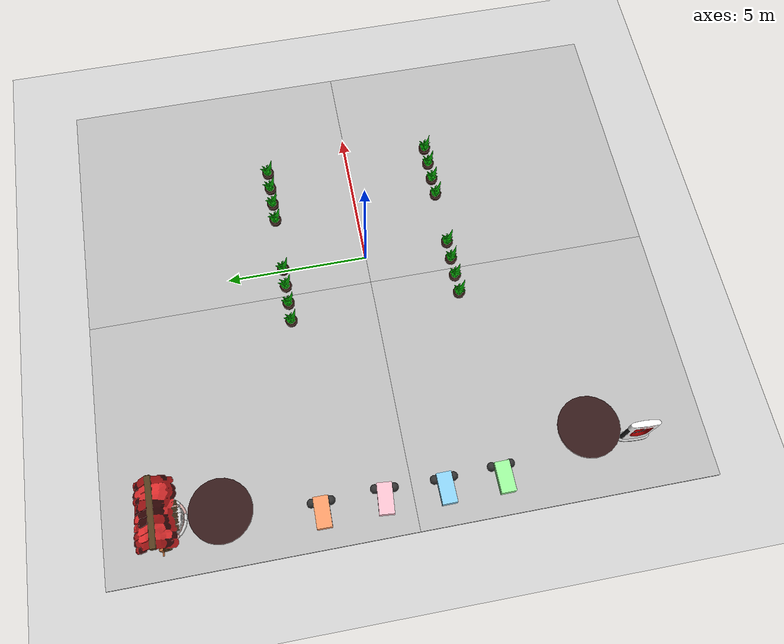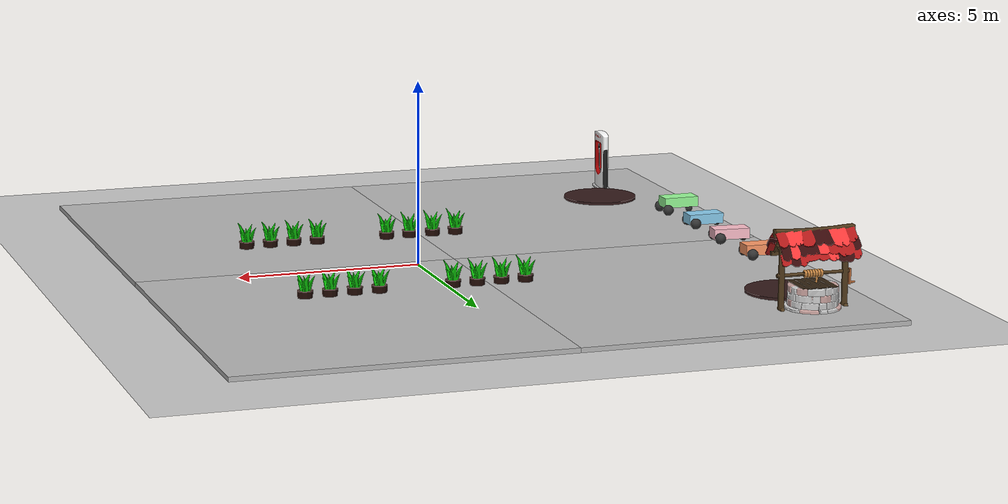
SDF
<sdf version="1.7">
 <world name="default">
  <model name="robot">
   <pose>-8.62492 2.96894 0.42331 3.3e-05 0.001765 -0.007859</pose>
   <link name="base_link">
    <pose>-0.075714 -0 0.0875 0 -0 0</pose>
    <inertial>
     <mass>1.14395</mass>
     <inertia>
      <ixx>0.126164</ixx>
      <ixy>0</ixy>
      <ixz>0</ixz>
      <iyy>0.416519</iyy>
      <iyz>0</iyz>
      <izz>0.481014</izz>
     </inertia>
    </inertial>
    <visual name="visual">
     <geometry><box><size>1.00571 0.5 0.284363</size></box></geometry>
     <material>
      <ambient>1.0 0.6 0.4 1.0</ambient>
      <diffuse>1.0 0.6 0.4 1.0</diffuse>
      <specular>1.0 0.8 0.6 1.0</specular>
     </material>
    </visual>
    <collision name="collision"><geometry><box><size>1.00571 0.5 0.284363</size></box></geometry></collision>
   </link>
   <link name="left_wheel">
    <pose>0.277142 0.312515 -0.0125 -1.5707 0 0</pose>
    <inertial>
     <mass>2</mass>
     <inertia><ixx>0.145833</ixx><ixy>0</ixy><ixz>0</ixz><iyy>0.145833</iyy><iyz>0</iyz><izz>0.125</izz></inertia>
    </inertial>
    <visual name="visual">
     <geometry><sphere><radius>0.15</radius></sphere></geometry>
     <material>
      <ambient>0.1 0.1 0.1 1.0</ambient>
      <diffuse>0.2 0.2 0.2 1.0</diffuse>
      <specular>0.3 0.3 0.3 1.0</specular>
     </material>
    </visual>
    <collision name="collision">
     <geometry><sphere><radius>0.15</radius></sphere></geometry>
     <surface>
      <friction><ode><mu>1</mu><mu2>1</mu2><slip1>0</slip1><slip2>0</slip2></ode></friction>
      <contact>
       <ode>
        <soft_cfm>0</soft_cfm>
        <soft_erp>0.2</soft_erp>
        <kp>1e+13</kp>
        <kd>1</kd>
        <max_vel>0.01</max_vel>
        <min_depth>0.01</min_depth>
       </ode>
      </contact>
     </surface>
    </collision>
   </link>
   <link name="right_wheel">
    <pose>0.277141 -0.312515 -0.0125 -1.5707 0 0</pose>
    <inertial>
     <mass>2</mass>
     <inertia><ixx>0.145833</ixx><ixy>0</ixy><ixz>0</ixz><iyy>0.145833</iyy><iyz>0</iyz><izz>0.125</izz></inertia>
    </inertial>
    <visual name="visual">
     <geometry><sphere><radius>0.15</radius></sphere></geometry>
     <material>
      <ambient>0.1 0.1 0.1 1.0</ambient>
      <diffuse>0.2 0.2 0.2 1.0</diffuse>
      <specular>0.3 0.3 0.3 1.0</specular>
     </material>
    </visual>
    <collision name="collision">
     <geometry><sphere><radius>0.15</radius></sphere></geometry>
     <surface>
      <friction><ode><mu>1</mu><mu2>1</mu2><slip1>0</slip1><slip2>0</slip2></ode></friction>
      <contact>
       <ode>
        <soft_cfm>0</soft_cfm>
        <soft_erp>0.2</soft_erp>
        <kp>1e+13</kp>
        <kd>1</kd>
        <max_vel>0.01</max_vel>
        <min_depth>0.01</min_depth>
       </ode>
      </contact>
     </surface>
    </collision>
   </link>
   <link name="caster">
    <pose>-0.478569 -0 -0.0625 0 -0 0</pose>
    <inertial>
     <mass>1</mass>
     <inertia><ixx>0.1</ixx><ixy>0</ixy><ixz>0</ixz><iyy>0.1</iyy><iyz>0</iyz><izz>0.1</izz></inertia>
    </inertial>
    <visual name="visual">
     <geometry><sphere><radius>0.1</radius></sphere></geometry>
     <material>
      <ambient>0.1 0.1 0.1 1.0</ambient>
      <diffuse>0.2 0.2 0.2 1.0</diffuse>
      <specular>0.3 0.3 0.3 1.0</specular>
     </material>
    </visual>
    <collision name="collision"><geometry><sphere><radius>0.1</radius></sphere></geometry></collision>
   </link>
   <joint name="left_wheel_joint" type="revolute">
    <parent>base_link</parent>
    <child>left_wheel</child>
    <axis>
     <xyz>0 0 1</xyz>
     <limit><lower>-1.79769e+308</lower><upper>1.79769e+308</upper></limit>
     <dynamics><spring_reference>0</spring_reference><spring_stiffness>0</spring_stiffness></dynamics>
    </axis>
   </joint>
   <joint name="right_wheel_joint" type="revolute">
    <parent>base_link</parent>
    <child>right_wheel</child>
    <axis>
     <xyz>0 0 1</xyz>
     <limit><lower>-1.79769e+308</lower><upper>1.79769e+308</upper></limit>
     <dynamics><spring_reference>0</spring_reference><spring_stiffness>0</spring_stiffness></dynamics>
    </axis>
   </joint>
   <joint name="caster_wheel" type="ball"><parent>base_link</parent><child>caster</child></joint>
   <plugin name="gazebo_ros_diff_drive" filename="libgazebo_ros_diff_drive.so">
    <ros><namespace>/</namespace><remapping>odom:=odom</remapping></ros>
    <publishOdomTf>1</publishOdomTf>
    <commandTopic>cmd_vel</commandTopic>
    <odometryTopic>odom</odometryTopic>
    <odometrySource>WORLD</odometrySource>
    <publish_odom>1</publish_odom>
    <robotBaseFrame>base_link</robotBaseFrame>
    <left_joint>left_wheel_joint</left_joint>
    <right_joint>right_wheel_joint</right_joint>
   </plugin>
  </model>
  <model name="robot2">
   <pose>-8.56641 0.922303 0.423301 0.000588 0.001775 -0.084487</pose>
   <link name="base_link">
    <pose>-0.0757135 -0 0.0875 0 -0 0</pose>
    <inertial>
     <mass>1.14395</mass>
     <inertia>
      <ixx>0.126164</ixx>
      <ixy>0</ixy>
      <ixz>0</ixz>
      <iyy>0.416519</iyy>
      <iyz>0</iyz>
      <izz>0.481014</izz>
     </inertia>
    </inertial>
    <visual name="visual">
     <geometry><box><size>1.00571 0.5 0.284363</size></box></geometry>
     <material>
      <ambient>1.0 0.75 0.8 1.0</ambient>
      <diffuse>1.0 0.75 0.8 1.0</diffuse>
      <specular>1.0 0.8 0.8 1.0</specular>
     </material>
    </visual>
    <collision name="collision"><geometry><box><size>1.00571 0.5 0.284363</size></box></geometry></collision>
   </link>
   <link name="left_wheel">
    <pose>0.2771415 0.3125145 -0.0125 -1.5707 0 0</pose>
    <inertial>
     <mass>2</mass>
     <inertia><ixx>0.145833</ixx><ixy>0</ixy><ixz>0</ixz><iyy>0.145833</iyy><iyz>0</iyz><izz>0.125</izz></inertia>
    </inertial>
    <visual name="visual">
     <geometry><sphere><radius>0.15</radius></sphere></geometry>
     <material>
      <ambient>0.1 0.1 0.1 1.0</ambient>
      <diffuse>0.2 0.2 0.2 1.0</diffuse>
      <specular>0.3 0.3 0.3 1.0</specular>
     </material>
    </visual>
    <collision name="collision">
     <geometry><sphere><radius>0.15</radius></sphere></geometry>
     <surface>
      <friction><ode><mu>1</mu><mu2>1</mu2><slip1>0</slip1><slip2>0</slip2></ode></friction>
      <contact>
       <ode>
        <soft_cfm>0</soft_cfm>
        <soft_erp>0.2</soft_erp>
        <kp>1e+13</kp>
        <kd>1</kd>
        <max_vel>0.01</max_vel>
        <min_depth>0.01</min_depth>
       </ode>
      </contact>
     </surface>
    </collision>
   </link>
   <link name="right_wheel">
    <pose>0.277141 -0.3125145 -0.0125 -1.5707 0 0</pose>
    <inertial>
     <mass>2</mass>
     <inertia><ixx>0.145833</ixx><ixy>0</ixy><ixz>0</ixz><iyy>0.145833</iyy><iyz>0</iyz><izz>0.125</izz></inertia>
    </inertial>
    <visual name="visual">
     <geometry><sphere><radius>0.15</radius></sphere></geometry>
     <material>
      <ambient>0.1 0.1 0.1 1.0</ambient>
      <diffuse>0.2 0.2 0.2 1.0</diffuse>
      <specular>0.3 0.3 0.3 1.0</specular>
     </material>
    </visual>
    <collision name="collision">
     <geometry><sphere><radius>0.15</radius></sphere></geometry>
     <surface>
      <friction><ode><mu>1</mu><mu2>1</mu2><slip1>0</slip1><slip2>0</slip2></ode></friction>
      <contact>
       <ode>
        <soft_cfm>0</soft_cfm>
        <soft_erp>0.2</soft_erp>
        <kp>1e+13</kp>
        <kd>1</kd>
        <max_vel>0.01</max_vel>
        <min_depth>0.01</min_depth>
       </ode>
      </contact>
     </surface>
    </collision>
   </link>
   <link name="caster">
    <pose>-0.478569 -0 -0.0625 0 -0 0</pose>
    <inertial>
     <mass>1</mass>
     <inertia><ixx>0.1</ixx><ixy>0</ixy><ixz>0</ixz><iyy>0.1</iyy><iyz>0</iyz><izz>0.1</izz></inertia>
    </inertial>
    <visual name="visual">
     <geometry><sphere><radius>0.1</radius></sphere></geometry>
     <material>
      <ambient>0.1 0.1 0.1 1.0</ambient>
      <diffuse>0.2 0.2 0.2 1.0</diffuse>
      <specular>0.3 0.3 0.3 1.0</specular>
     </material>
    </visual>
    <collision name="collision"><geometry><sphere><radius>0.1</radius></sphere></geometry></collision>
   </link>
   <joint name="left_wheel_joint" type="revolute">
    <parent>base_link</parent>
    <child>left_wheel</child>
    <axis>
     <xyz>0 0 1</xyz>
     <limit><lower>-1.79769e+308</lower><upper>1.79769e+308</upper></limit>
     <dynamics><spring_reference>0</spring_reference><spring_stiffness>0</spring_stiffness></dynamics>
    </axis>
   </joint>
   <joint name="right_wheel_joint" type="revolute">
    <parent>base_link</parent>
    <child>right_wheel</child>
    <axis>
     <xyz>0 0 1</xyz>
     <limit><lower>-1.79769e+308</lower><upper>1.79769e+308</upper></limit>
     <dynamics><spring_reference>0</spring_reference><spring_stiffness>0</spring_stiffness></dynamics>
    </axis>
   </joint>
   <joint name="caster_wheel" type="ball"><parent>base_link</parent><child>caster</child></joint>
  </model>
  <model name="robot3">
   <pose>-8.59848 -1.05766 0.42331 -4e-06 0.001765 0.012015</pose>
   <link name="base_link">
    <pose>-0.0757135 -0 0.0875 0 -0 0</pose>
    <inertial>
     <mass>0.5</mass>
     <inertia><ixx>0.01577</ixx><ixy>0</ixy><ixz>0</ixz><iyy>0.20826</iyy><iyz>0</iyz><izz>0.24051</izz></inertia>
    </inertial>
    <visual name="visual">
     <geometry><box><size>1.00571 0.5 0.284363</size></box></geometry>
     <material>
      <ambient>0.54 0.81 0.94 1.0</ambient>
      <diffuse>0.54 0.81 0.94 1.0</diffuse>
      <specular>0.6 0.9 1.0 1.0</specular>
     </material>
    </visual>
    <collision name="collision"><geometry><box><size>1.00571 0.5 0.284363</size></box></geometry></collision>
   </link>
   <link name="left_wheel">
    <pose>0.277142 0.312514 -0.0125 -1.5707 0 0</pose>
    <inertial>
     <mass>1</mass>
     <inertia>
      <ixx>0.0729165</ixx>
      <ixy>0</ixy>
      <ixz>0</ixz>
      <iyy>0.0729165</iyy>
      <iyz>0</iyz>
      <izz>0.0625</izz>
     </inertia>
    </inertial>
    <visual name="visual">
     <geometry><sphere><radius>0.15</radius></sphere></geometry>
     <material>
      <ambient>0.1 0.1 0.1 1.0</ambient>
      <diffuse>0.2 0.2 0.2 1.0</diffuse>
      <specular>0.3 0.3 0.3 1.0</specular>
     </material>
    </visual>
    <collision name="collision">
     <geometry><sphere><radius>0.15</radius></sphere></geometry>
     <surface>
      <friction><ode><mu>1</mu><mu2>1</mu2><slip1>0</slip1><slip2>0</slip2></ode></friction>
      <contact>
       <ode>
        <soft_cfm>0</soft_cfm>
        <soft_erp>0.2</soft_erp>
        <kp>1e+13</kp>
        <kd>1</kd>
        <max_vel>0.01</max_vel>
        <min_depth>0.01</min_depth>
       </ode>
      </contact>
     </surface>
    </collision>
   </link>
   <link name="right_wheel">
    <pose>0.277141 -0.312514 -0.0125 -1.5707 0 0</pose>
    <inertial>
     <mass>1</mass>
     <inertia>
      <ixx>0.0729165</ixx>
      <ixy>0</ixy>
      <ixz>0</ixz>
      <iyy>0.0729165</iyy>
      <iyz>0</iyz>
      <izz>0.0625</izz>
     </inertia>
    </inertial>
    <visual name="visual">
     <geometry><sphere><radius>0.15</radius></sphere></geometry>
     <material>
      <ambient>0.1 0.1 0.1 1.0</ambient>
      <diffuse>0.2 0.2 0.2 1.0</diffuse>
      <specular>0.3 0.3 0.3 1.0</specular>
     </material>
    </visual>
    <collision name="collision">
     <geometry><sphere><radius>0.15</radius></sphere></geometry>
     <surface>
      <friction><ode><mu>1</mu><mu2>1</mu2><slip1>0</slip1><slip2>0</slip2></ode></friction>
      <contact>
       <ode>
        <soft_cfm>0</soft_cfm>
        <soft_erp>0.2</soft_erp>
        <kp>1e+13</kp>
        <kd>1</kd>
        <max_vel>0.01</max_vel>
        <min_depth>0.01</min_depth>
       </ode>
      </contact>
     </surface>
    </collision>
   </link>
   <link name="caster">
    <pose>-0.478569 -0 -0.0625 0 -0 0</pose>
    <inertial>
     <mass>0.5</mass>
     <inertia><ixx>0.025</ixx><ixy>0</ixy><ixz>0</ixz><iyy>0.025</iyy><iyz>0</iyz><izz>0.025</izz></inertia>
    </inertial>
    <visual name="visual">
     <geometry><sphere><radius>0.1</radius></sphere></geometry>
     <material>
      <ambient>0.1 0.1 0.1 1.0</ambient>
      <diffuse>0.2 0.2 0.2 1.0</diffuse>
      <specular>0.3 0.3 0.3 1.0</specular>
     </material>
    </visual>
    <collision name="collision"><geometry><sphere><radius>0.1</radius></sphere></geometry></collision>
   </link>
   <joint name="left_wheel_joint" type="revolute">
    <parent>base_link</parent>
    <child>left_wheel</child>
    <axis>
     <xyz>0 0 1</xyz>
     <limit><lower>-1.79769e+308</lower><upper>1.79769e+308</upper></limit>
     <dynamics><spring_reference>0</spring_reference><spring_stiffness>0</spring_stiffness></dynamics>
    </axis>
   </joint>
   <joint name="right_wheel_joint" type="revolute">
    <parent>base_link</parent>
    <child>right_wheel</child>
    <axis>
     <xyz>0 0 1</xyz>
     <limit><lower>-1.79769e+308</lower><upper>1.79769e+308</upper></limit>
     <dynamics><spring_reference>0</spring_reference><spring_stiffness>0</spring_stiffness></dynamics>
    </axis>
   </joint>
   <joint name="caster_wheel" type="ball"><parent>base_link</parent><child>caster</child></joint>
  </model>
  <model name="robot4">
   <pose>-8.52918 -2.96434 0.423311 5e-06 0.001765 0.010793</pose>
   <link name="base_link">
    <pose>-0.151427 -0 0.175 0 -0 0</pose>
    <inertial>
     <mass>0.571975</mass>
     <inertia>
      <ixx>0.015791</ixx>
      <ixy>0</ixy>
      <ixz>0</ixz>
      <iyy>0.20826</iyy>
      <iyz>0</iyz>
      <izz>0.240507</izz>
     </inertia>
    </inertial>
    <visual name="visual">
     <geometry><box><size>1.00571 0.5 0.284363</size></box></geometry>
     <material>
      <ambient>0.6 1.0 0.6 1.0</ambient>
      <diffuse>0.6 1.0 0.6 1.0</diffuse>
      <specular>0.8 1.0 0.8 1.0</specular>
     </material>
    </visual>
    <collision name="collision"><geometry><box><size>1.00571 0.5 0.284363</size></box></geometry></collision>
   </link>
   <link name="left_wheel">
    <pose>0.277141 0.312515 -0.0125 -1.5707 0 0</pose>
    <inertial>
     <mass>0.5</mass>
     <inertia>
      <ixx>0.0364583</ixx>
      <ixy>0</ixy>
      <ixz>0</ixz>
      <iyy>0.0364583</iyy>
      <iyz>0</iyz>
      <izz>0.03125</izz>
     </inertia>
    </inertial>
    <visual name="visual">
     <geometry><sphere><radius>0.15</radius></sphere></geometry>
     <material>
      <ambient>0.1 0.1 0.1 1.0</ambient>
      <diffuse>0.2 0.2 0.2 1.0</diffuse>
      <specular>0.3 0.3 0.3 1.0</specular>
     </material>
    </visual>
    <collision name="collision">
     <geometry><sphere><radius>0.15</radius></sphere></geometry>
     <surface>
      <friction><ode><mu>1</mu><mu2>1</mu2><slip1>0</slip1><slip2>0</slip2></ode></friction>
      <contact>
       <ode>
        <soft_cfm>0</soft_cfm>
        <soft_erp>0.2</soft_erp>
        <kp>1e+13</kp>
        <kd>1</kd>
        <max_vel>0.01</max_vel>
        <min_depth>0.01</min_depth>
       </ode>
      </contact>
     </surface>
    </collision>
   </link>
   <link name="right_wheel">
    <pose>0.277141 -0.312515 -0.0125 -1.5707 0 0</pose>
    <inertial>
     <mass>0.5</mass>
     <inertia>
      <ixx>0.0364583</ixx>
      <ixy>0</ixy>
      <ixz>0</ixz>
      <iyy>0.0364583</iyy>
      <iyz>0</iyz>
      <izz>0.03125</izz>
     </inertia>
    </inertial>
    <visual name="visual">
     <geometry><sphere><radius>0.15</radius></sphere></geometry>
     <material>
      <ambient>0.1 0.1 0.1 1.0</ambient>
      <diffuse>0.2 0.2 0.2 1.0</diffuse>
      <specular>0.3 0.3 0.3 1.0</specular>
     </material>
    </visual>
    <collision name="collision">
     <geometry><sphere><radius>0.15</radius></sphere></geometry>
     <surface>
      <friction><ode><mu>1</mu><mu2>1</mu2><slip1>0</slip1><slip2>0</slip2></ode></friction>
      <contact>
       <ode>
        <soft_cfm>0</soft_cfm>
        <soft_erp>0.2</soft_erp>
        <kp>1e+13</kp>
        <kd>1</kd>
        <max_vel>0.01</max_vel>
        <min_depth>0.01</min_depth>
       </ode>
      </contact>
     </surface>
    </collision>
   </link>
   <link name="caster">
    <pose>-0.478569 -0 -0.0625 0 -0 0</pose>
    <inertial>
     <mass>0.5</mass>
     <inertia><ixx>0.025</ixx><ixy>0</ixy><ixz>0</ixz><iyy>0.025</iyy><iyz>0</iyz><izz>0.025</izz></inertia>
    </inertial>
    <visual name="visual">
     <geometry><sphere><radius>0.1</radius></sphere></geometry>
     <material>
      <ambient>0.1 0.1 0.1 1.0</ambient>
      <diffuse>0.2 0.2 0.2 1.0</diffuse>
      <specular>0.3 0.3 0.3 1.0</specular>
     </material>
    </visual>
    <collision name="collision"><geometry><sphere><radius>0.1</radius></sphere></geometry></collision>
   </link>
   <joint name="left_wheel_joint" type="revolute">
    <parent>base_link</parent>
    <child>left_wheel</child>
    <axis>
     <xyz>0 0 1</xyz>
     <limit><lower>-1.79769e+308</lower><upper>1.79769e+308</upper></limit>
     <dynamics><spring_reference>0</spring_reference><spring_stiffness>0</spring_stiffness></dynamics>
    </axis>
   </joint>
   <joint name="right_wheel_joint" type="revolute">
    <parent>base_link</parent>
    <child>right_wheel</child>
    <axis>
     <xyz>0 0 1</xyz>
     <limit><lower>-1.79769e+308</lower><upper>1.79769e+308</upper></limit>
     <dynamics><spring_reference>0</spring_reference><spring_stiffness>0</spring_stiffness></dynamics>
    </axis>
   </joint>
   <joint name="caster_wheel" type="ball"><parent>base_link</parent><child>caster</child></joint>
  </model>
  <model name="ground_plane">
   <static>1</static>
   <link name="link">
    <collision name="collision">
     <geometry><plane><normal>0 0 1</normal><size>100 100</size></plane></geometry>
     <surface><friction><ode><mu>100</mu><mu2>50</mu2></ode></friction></surface>
    </collision>
    <visual name="visual">
     <cast_shadows>0</cast_shadows>
     <geometry><plane><normal>0 0 1</normal><size>100 100</size></plane></geometry>
     <material>
      <script><uri>file://media/materials/scripts/gazebo.material</uri><name>Gazebo/Grey</name></script>
     </material>
    </visual>
   </link>
  </model>
  <light name="sun" type="directional">
   <pose>0 0 10 0 -0 0</pose>
   <diffuse>0.8 0.8 0.8 1</diffuse>
   <specular>0.2 0.2 0.2 1</specular>
   <attenuation>
    <range>1000</range>
    <constant>0.9</constant>
    <linear>0.01</linear>
    <quadratic>0.001</quadratic>
   </attenuation>
   <direction>-0.5 0.1 -0.9</direction>
   <spot><inner_angle>0</inner_angle><outer_angle>0</outer_angle><falloff>0</falloff></spot>
  </light>
  <gravity>0 0 -9.8</gravity>
  <magnetic_field>6e-06 2.3e-05 -4.2e-05</magnetic_field>
  <atmosphere type="adiabatic"/>
  <physics type="ode">
   <max_step_size>0.001</max_step_size>
   <real_time_factor>1</real_time_factor>
   <real_time_update_rate>1000</real_time_update_rate>
  </physics>
  <scene><ambient>0.4 0.4 0.4 1</ambient><background>0.7 0.7 0.7 1</background><shadows>1</shadows></scene>
  <audio><device>default</device></audio>
  <spherical_coordinates>
   <surface_model>EARTH_WGS84</surface_model>
   <latitude_deg>0</latitude_deg>
   <longitude_deg>0</longitude_deg>
   <elevation>0</elevation>
   <heading_deg>0</heading_deg>
  </spherical_coordinates>
  <model name="plant_1A">
   <pose>-2 -3 0 0 -0 0</pose>
   <static>1</static>
   <link name="link">
    <visual name="visual">
     <geometry>
      <mesh>
       <uri>file:///home/gustavo/gazebo_ws/src/plugins/models/plants/PotPlant.dae</uri>
       <scale>0.2 0.2 0.2</scale>
      </mesh>
     </geometry>
    </visual>
   </link>
  </model>
  <model name="plant_2A">
   <pose>2 -3 0 0 -0 0</pose>
   <static>1</static>
   <link name="link">
    <visual name="visual">
     <geometry>
      <mesh>
       <uri>file:///home/gustavo/gazebo_ws/src/plugins/models/plants/PotPlant.dae</uri>
       <scale>0.2 0.2 0.2</scale>
      </mesh>
     </geometry>
    </visual>
   </link>
  </model>
  <model name="plant_3A">
   <pose>-2 3 0 0 -0 0</pose>
   <static>1</static>
   <link name="link">
    <visual name="visual">
     <geometry>
      <mesh>
       <uri>file:///home/gustavo/gazebo_ws/src/plugins/models/plants/PotPlant.dae</uri>
       <scale>0.2 0.2 0.2</scale>
      </mesh>
     </geometry>
    </visual>
   </link>
  </model>
  <model name="plant_4A">
   <pose>2 3 0 0 -0 0</pose>
   <static>1</static>
   <link name="link">
    <visual name="visual">
     <geometry>
      <mesh>
       <uri>file:///home/gustavo/gazebo_ws/src/plugins/models/plants/PotPlant.dae</uri>
       <scale>0.2 0.2 0.2</scale>
      </mesh>
     </geometry>
    </visual>
   </link>
  </model>
  <model name="plant_1B">
   <pose>-1.333 -3 0 0 -0 0</pose>
   <static>1</static>
   <link name="link">
    <visual name="visual">
     <geometry>
      <mesh>
       <uri>file:///home/gustavo/gazebo_ws/src/plugins/models/plants/PotPlant.dae</uri>
       <scale>0.2 0.2 0.2</scale>
      </mesh>
     </geometry>
    </visual>
   </link>
  </model>
  <model name="plant_2B">
   <pose>2.667 -3 0 0 -0 0</pose>
   <static>1</static>
   <link name="link">
    <visual name="visual">
     <geometry>
      <mesh>
       <uri>file:///home/gustavo/gazebo_ws/src/plugins/models/plants/PotPlant.dae</uri>
       <scale>0.2 0.2 0.2</scale>
      </mesh>
     </geometry>
    </visual>
   </link>
  </model>
  <model name="plant_3B">
   <pose>-1.333 3 0 0 -0 0</pose>
   <static>1</static>
   <link name="link">
    <visual name="visual">
     <geometry>
      <mesh>
       <uri>file:///home/gustavo/gazebo_ws/src/plugins/models/plants/PotPlant.dae</uri>
       <scale>0.2 0.2 0.2</scale>
      </mesh>
     </geometry>
    </visual>
   </link>
  </model>
  <model name="plant_4B">
   <pose>2.667 3 0 0 -0 0</pose>
   <static>1</static>
   <link name="link">
    <visual name="visual">
     <geometry>
      <mesh>
       <uri>file:///home/gustavo/gazebo_ws/src/plugins/models/plants/PotPlant.dae</uri>
       <scale>0.2 0.2 0.2</scale>
      </mesh>
     </geometry>
    </visual>
   </link>
  </model>
  <model name="plant_1C">
   <pose>-0.667 -3 0 0 -0 0</pose>
   <static>1</static>
   <link name="link">
    <visual name="visual">
     <geometry>
      <mesh>
       <uri>file:///home/gustavo/gazebo_ws/src/plugins/models/plants/PotPlant.dae</uri>
       <scale>0.2 0.2 0.2</scale>
      </mesh>
     </geometry>
    </visual>
   </link>
  </model>
  <model name="plant_2C">
   <pose>3.333 -3 0 0 -0 0</pose>
   <static>1</static>
   <link name="link">
    <visual name="visual">
     <geometry>
      <mesh>
       <uri>file:///home/gustavo/gazebo_ws/src/plugins/models/plants/PotPlant.dae</uri>
       <scale>0.2 0.2 0.2</scale>
      </mesh>
     </geometry>
    </visual>
   </link>
  </model>
  <model name="plant_3C">
   <pose>-0.667 3 0 0 -0 0</pose>
   <static>1</static>
   <link name="link">
    <visual name="visual">
     <geometry>
      <mesh>
       <uri>file:///home/gustavo/gazebo_ws/src/plugins/models/plants/PotPlant.dae</uri>
       <scale>0.2 0.2 0.2</scale>
      </mesh>
     </geometry>
    </visual>
   </link>
  </model>
  <model name="plant_4C">
   <pose>3.333 3 0 0 -0 0</pose>
   <static>1</static>
   <link name="link">
    <visual name="visual">
     <geometry>
      <mesh>
       <uri>file:///home/gustavo/gazebo_ws/src/plugins/models/plants/PotPlant.dae</uri>
       <scale>0.2 0.2 0.2</scale>
      </mesh>
     </geometry>
    </visual>
   </link>
  </model>
  <model name="plant_1D">
   <pose>0 -3 0 0 -0 0</pose>
   <static>1</static>
   <link name="link">
    <visual name="visual">
     <geometry>
      <mesh>
       <uri>file:///home/gustavo/gazebo_ws/src/plugins/models/plants/PotPlant.dae</uri>
       <scale>0.2 0.2 0.2</scale>
      </mesh>
     </geometry>
    </visual>
   </link>
  </model>
  <model name="plant_2D">
   <pose>4 -3 0 0 -0 0</pose>
   <static>1</static>
   <link name="link">
    <visual name="visual">
     <geometry>
      <mesh>
       <uri>file:///home/gustavo/gazebo_ws/src/plugins/models/plants/PotPlant.dae</uri>
       <scale>0.2 0.2 0.2</scale>
      </mesh>
     </geometry>
    </visual>
   </link>
  </model>
  <model name="plant_3D">
   <pose>0 3 0 0 -0 0</pose>
   <static>1</static>
   <link name="link">
    <visual name="visual">
     <geometry>
      <mesh>
       <uri>file:///home/gustavo/gazebo_ws/src/plugins/models/plants/PotPlant.dae</uri>
       <scale>0.2 0.2 0.2</scale>
      </mesh>
     </geometry>
    </visual>
   </link>
  </model>
  <model name="plant_4D">
   <pose>4 3 0 0 -0 0</pose>
   <static>1</static>
   <link name="link">
    <visual name="visual">
     <geometry>
      <mesh>
       <uri>file:///home/gustavo/gazebo_ws/src/plugins/models/plants/PotPlant.dae</uri>
       <scale>0.2 0.2 0.2</scale>
      </mesh>
     </geometry>
    </visual>
   </link>
  </model>
  <model name="well">
   <static>1</static>
   <link name="link">
    <visual name="visual">
     <geometry>
      <mesh>
       <uri>file:///home/gustavo/gazebo_ws/src/plugins/models/well/meshes/well.dae</uri>
       <scale>0.1 0.1 0.1</scale>
      </mesh>
     </geometry>
    </visual>
   </link>
   <pose>-8 8 0 0 -0 0</pose>
  </model>
  <model name="mud">
   <static>1</static>
   <link name="link">
    <collision name="collision"><geometry><box><size>17.6 20 0.2</size></box></geometry></collision>
    <visual name="visual_1">
     <pose>-4.4 5 0 0 -0 0</pose>
     <cast_shadows>0</cast_shadows>
     <geometry><box><size>8.8 10 0.2</size></box></geometry>
     <material>
      <script>
       <uri>model://mud_box/materials/scripts</uri>
       <uri>model://mud_box/materials/textures</uri>
       <name>vrc/mud</name>
      </script>
     </material>
    </visual>
    <visual name="visual_2">
     <pose>4.4 5 0 0 -0 0</pose>
     <cast_shadows>0</cast_shadows>
     <geometry><box><size>8.8 10 0.2</size></box></geometry>
     <material>
      <script>
       <uri>model://mud_box/materials/scripts</uri>
       <uri>model://mud_box/materials/textures</uri>
       <name>vrc/mud</name>
      </script>
     </material>
    </visual>
    <visual name="visual_3">
     <pose>4.4 -5 0 0 -0 0</pose>
     <cast_shadows>0</cast_shadows>
     <geometry><box><size>8.8 10 0.2</size></box></geometry>
     <material>
      <script>
       <uri>model://mud_box/materials/scripts</uri>
       <uri>model://mud_box/materials/textures</uri>
       <name>vrc/mud</name>
      </script>
     </material>
    </visual>
    <visual name="visual_4">
     <pose>-4.4 -5 0 0 -0 0</pose>
     <cast_shadows>0</cast_shadows>
     <geometry><box><size>8.8 10 0.2</size></box></geometry>
     <material>
      <script>
       <uri>model://mud_box/materials/scripts</uri>
       <uri>model://mud_box/materials/textures</uri>
       <name>vrc/mud</name>
      </script>
     </material>
    </visual>
   </link>
   <pose>-1 0 0 0 -0 0</pose>
  </model>
  <model name="charger">
   <static>1</static>
   <link name="link">
    <visual name="visual">
     <geometry>
      <mesh>
       <uri>file:///home/gustavo/gazebo_ws/src/plugins/models/charger2/charger.dae</uri>
       <scale>1 1 1</scale>
      </mesh>
     </geometry>
    </visual>
   </link>
   <pose>-8.2 -7 0 0 0 -1.62417</pose>
  </model>
  <model name="outroBigCilindro">
   <link name="link">
    <inertial>
     <mass>1</mass>
     <inertia><ixx>0.145833</ixx><ixy>0</ixy><ixz>0</ixz><iyy>0.145833</iyy><iyz>0</iyz><izz>0.125</izz></inertia>
    </inertial>
    <visual name="visual">
     <geometry><cylinder><radius>1.04919</radius><length>0.0737919</length></cylinder></geometry>
     <material>
      <script><name>Gazebo/Grey</name><uri>file://media/materials/scripts/gazebo.material</uri></script>
      <shader type="pixel"><normal_map>__default__</normal_map></shader>
      <ambient>0.2 0.1 0.1 1</ambient>
      <diffuse>0.2 0.1 0.1 1</diffuse>
      <specular>0.2 0.11 0.11 1</specular>
      <emissive>0.2 0.1 0.1 1</emissive>
     </material>
    </visual>
    <collision name="collision">
     <geometry><cylinder><radius>1.04919</radius><length>0.073792</length></cylinder></geometry>
     <surface>
      <friction>
       <ode><mu>1</mu><mu2>1</mu2><fdir1>0 0 0</fdir1><slip1>0</slip1><slip2>0</slip2></ode>
       <torsional>
        <coefficient>1</coefficient>
        <patch_radius>0</patch_radius>
        <surface_radius>0</surface_radius>
        <use_patch_radius>1</use_patch_radius>
        <ode><slip>0</slip></ode>
       </torsional>
      </friction>
      <bounce><restitution_coefficient>0</restitution_coefficient><threshold>1e+06</threshold></bounce>
      <contact>
       <collide_without_contact>0</collide_without_contact>
       <collide_without_contact_bitmask>1</collide_without_contact_bitmask>
       <collide_bitmask>1</collide_bitmask>
       <ode>
        <soft_cfm>0</soft_cfm>
        <soft_erp>0.2</soft_erp>
        <kp>1e+13</kp>
        <kd>1</kd>
        <max_vel>0.01</max_vel>
        <min_depth>0</min_depth>
       </ode>
       <bullet>
        <split_impulse>1</split_impulse>
        <split_impulse_penetration_threshold>-0.01</split_impulse_penetration_threshold>
        <soft_cfm>0</soft_cfm>
        <soft_erp>0.2</soft_erp>
        <kp>1e+13</kp>
        <kd>1</kd>
       </bullet>
      </contact>
     </surface>
    </collision>
   </link>
   <static>0</static>
   <pose>-8 6.2 0.136895 4e-06 -0 -1e-06</pose>
  </model>
  <model name="outroBigCilindro_clone">
   <link name="link">
    <inertial>
     <mass>1</mass>
     <inertia><ixx>0.145833</ixx><ixy>0</ixy><ixz>0</ixz><iyy>0.145833</iyy><iyz>0</iyz><izz>0.125</izz></inertia>
    </inertial>
    <visual name="visual">
     <geometry><cylinder><radius>1.04919</radius><length>0.0737919</length></cylinder></geometry>
     <material>
      <script><name>Gazebo/Grey</name><uri>file://media/materials/scripts/gazebo.material</uri></script>
      <shader type="pixel"><normal_map>__default__</normal_map></shader>
      <ambient>0.2 0.1 0.1 1</ambient>
      <diffuse>0.2 0.1 0.1 1</diffuse>
      <specular>0.2 0.11 0.11 1</specular>
      <emissive>0.2 0.1 0.1 1</emissive>
     </material>
    </visual>
    <collision name="collision">
     <geometry><cylinder><radius>1.04919</radius><length>0.073792</length></cylinder></geometry>
     <surface>
      <friction>
       <ode><mu>1</mu><mu2>1</mu2><fdir1>0 0 0</fdir1><slip1>0</slip1><slip2>0</slip2></ode>
       <torsional>
        <coefficient>1</coefficient>
        <patch_radius>0</patch_radius>
        <surface_radius>0</surface_radius>
        <use_patch_radius>1</use_patch_radius>
        <ode><slip>0</slip></ode>
       </torsional>
      </friction>
      <bounce><restitution_coefficient>0</restitution_coefficient><threshold>1e+06</threshold></bounce>
      <contact>
       <collide_without_contact>0</collide_without_contact>
       <collide_without_contact_bitmask>1</collide_without_contact_bitmask>
       <collide_bitmask>1</collide_bitmask>
       <ode>
        <soft_cfm>0</soft_cfm>
        <soft_erp>0.2</soft_erp>
        <kp>1e+13</kp>
        <kd>1</kd>
        <max_vel>0.01</max_vel>
        <min_depth>0</min_depth>
       </ode>
       <bullet>
        <split_impulse>1</split_impulse>
        <split_impulse_penetration_threshold>-0.01</split_impulse_penetration_threshold>
        <soft_cfm>0</soft_cfm>
        <soft_erp>0.2</soft_erp>
        <kp>1e+13</kp>
        <kd>1</kd>
       </bullet>
      </contact>
     </surface>
    </collision>
   </link>
   <static>0</static>
   <pose>-7.5 -6.2 0.136901 -5e-06 1e-06 -2e-06</pose>
  </model>
  <light name="sun_clone" type="directional">
   <pose>13.3913 1.36485 5 0 -0 0</pose>
   <diffuse>0.8 0.8 0.8 1</diffuse>
   <specular>0.2 0.2 0.2 1</specular>
   <direction>-0.483368 0.096674 -0.870063</direction>
   <attenuation>
    <range>1000</range>
    <constant>0.9</constant>
    <linear>0.01</linear>
    <quadratic>0.001</quadratic>
   </attenuation>
   <spot><inner_angle>0</inner_angle><outer_angle>0</outer_angle><falloff>0</falloff></spot>
  </light>
 </world>
</sdf>
